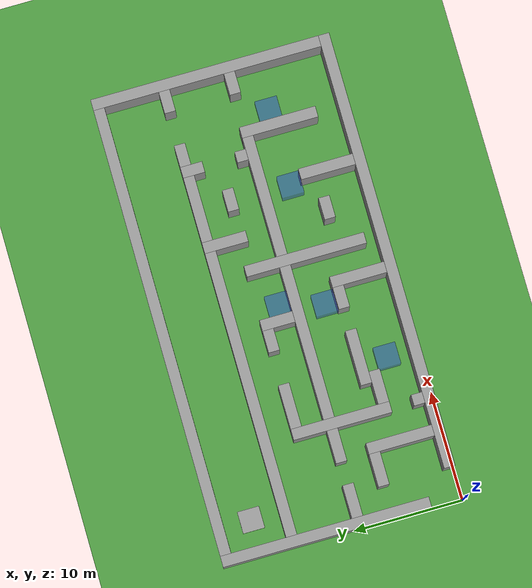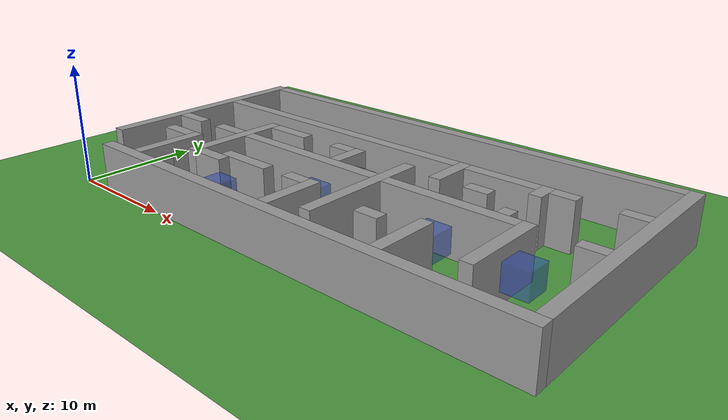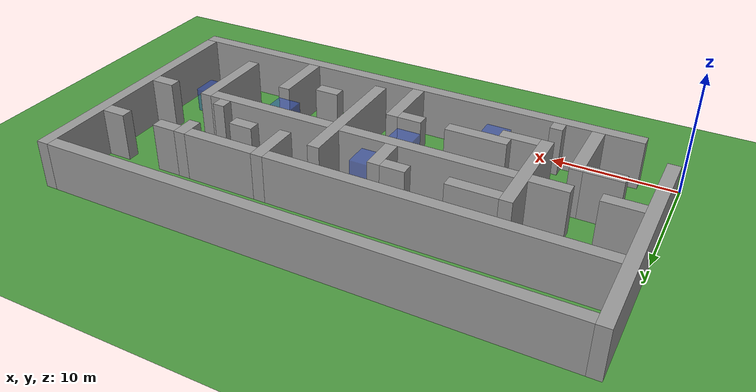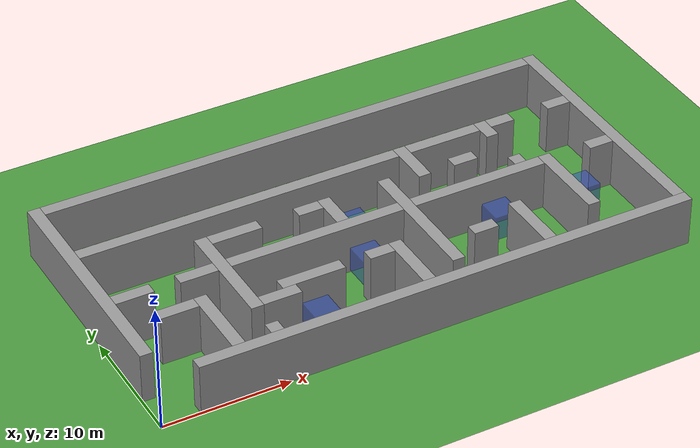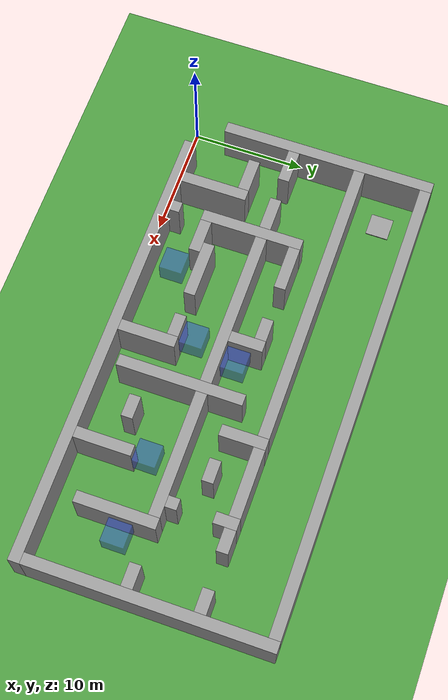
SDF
<sdf version="1.6">
 <world name="default">
  <light name="sun" type="directional">
   <pose>0 0 10 0 -0 0</pose>
   <diffuse>0.8 0.8 0.8 1</diffuse>
   <specular>0.1 0.1 0.1 1</specular>
   <attenuation>
    <range>1000</range>
    <constant>0.9</constant>
    <linear>0.01</linear>
    <quadratic>0.001</quadratic>
   </attenuation>
   <direction>-0.5 0.5 -1</direction>
  </light>
  <model name="ground_plane">
   <static>1</static>
   <link name="link">
    <collision name="collision">
     <geometry><plane><normal>0 0 1</normal><size>100 100</size></plane></geometry>
     <surface><friction><ode><mu>100</mu><mu2>50</mu2></ode></friction></surface>
    </collision>
    <visual name="visual">
     <cast_shadows>0</cast_shadows>
     <geometry><plane><normal>0 0 1</normal><size>100 100</size></plane></geometry>
     <material>
      <script><uri>file://media/materials/scripts/gazebo.material</uri><name>Gazebo/Grass</name></script>
     </material>
    </visual>
   </link>
  </model>
  <gravity>0 0 -9.8</gravity>
  <magnetic_field>6e-06 2.3e-05 -4.2e-05</magnetic_field>
  <atmosphere type="adiabatic"/>
  <physics name="default_physics" default="0" type="ode">
   <max_step_size>0.004</max_step_size>
   <real_time_factor>1</real_time_factor>
   <real_time_update_rate>250</real_time_update_rate>
  </physics>
  <scene>
   <ambient>0.4 0.4 0.4 1</ambient>
   <background>0.7 0.7 0.7 1</background>
   <shadows>1</shadows>
   <sky>
    <clouds>
     <speed>0.6</speed>
     <direction>0</direction>
     <humidity>0.5</humidity>
     <mean_size>0.5</mean_size>
     <ambient>0.8 0.8 0.8 1</ambient>
    </clouds>
   </sky>
  </scene>
  <spherical_coordinates>
   <surface_model>EARTH_WGS84</surface_model>
   <latitude_deg>0</latitude_deg>
   <longitude_deg>0</longitude_deg>
   <elevation>0</elevation>
   <heading_deg>0</heading_deg>
  </spherical_coordinates>
  <model name="wall">
   <pose>23.000000 0.500000 2 0 0 0</pose>
   <static>1</static>
   <link name="wall-link">
    <collision name="collision"><geometry><box><size>40 1 4</size></box></geometry></collision>
    <visual name="visual">
     <geometry><box><size>40 1 4</size></box></geometry>
     <material>
      <script><name>Gazebo/Grey</name><uri>file://media/materials/scripts/gazebo.material</uri></script>
     </material>
    </visual>
    <gravity>0</gravity>
   </link>
  </model>
  <model name="wall">
   <pose>6.500000 4.000000 2 0 0 0</pose>
   <static>1</static>
   <link name="wall-link">
    <collision name="collision"><geometry><box><size>1 6 4</size></box></geometry></collision>
    <visual name="visual">
     <geometry><box><size>1 6 4</size></box></geometry>
     <material>
      <script><name>Gazebo/Grey</name><uri>file://media/materials/scripts/gazebo.material</uri></script>
     </material>
    </visual>
    <gravity>0</gravity>
   </link>
  </model>
  <model name="wall">
   <pose>9.500000 1.500000 2 0 0 0</pose>
   <static>1</static>
   <link name="wall-link">
    <collision name="collision"><geometry><box><size>1 1 4</size></box></geometry></collision>
    <visual name="visual">
     <geometry><box><size>1 1 4</size></box></geometry>
     <material>
      <script><name>Gazebo/Grey</name><uri>file://media/materials/scripts/gazebo.material</uri></script>
     </material>
    </visual>
    <gravity>0</gravity>
   </link>
  </model>
  <model name="wall">
   <pose>21.500000 3.500000 2 0 0 0</pose>
   <static>1</static>
   <link name="wall-link">
    <collision name="collision"><geometry><box><size>1 5 4</size></box></geometry></collision>
    <visual name="visual">
     <geometry><box><size>1 5 4</size></box></geometry>
     <material>
      <script><name>Gazebo/Grey</name><uri>file://media/materials/scripts/gazebo.material</uri></script>
     </material>
    </visual>
    <gravity>0</gravity>
   </link>
  </model>
  <model name="wall">
   <pose>31.500000 3.500000 2 0 0 0</pose>
   <static>1</static>
   <link name="wall-link">
    <collision name="collision"><geometry><box><size>1 5 4</size></box></geometry></collision>
    <visual name="visual">
     <geometry><box><size>1 5 4</size></box></geometry>
     <material>
      <script><name>Gazebo/Grey</name><uri>file://media/materials/scripts/gazebo.material</uri></script>
     </material>
    </visual>
    <gravity>0</gravity>
   </link>
  </model>
  <model name="wall">
   <pose>42.500000 11.500000 2 0 0 0</pose>
   <static>1</static>
   <link name="wall-link">
    <collision name="collision"><geometry><box><size>1 21 4</size></box></geometry></collision>
    <visual name="visual">
     <geometry><box><size>1 21 4</size></box></geometry>
     <material>
      <script><name>Gazebo/Grey</name><uri>file://media/materials/scripts/gazebo.material</uri></script>
     </material>
    </visual>
    <gravity>0</gravity>
   </link>
  </model>
  <model name="wall">
   <pose>24.500000 7.500000 2 0 0 0</pose>
   <static>1</static>
   <link name="wall-link">
    <collision name="collision"><geometry><box><size>1 11 4</size></box></geometry></collision>
    <visual name="visual">
     <geometry><box><size>1 11 4</size></box></geometry>
     <material>
      <script><name>Gazebo/Grey</name><uri>file://media/materials/scripts/gazebo.material</uri></script>
     </material>
    </visual>
    <gravity>0</gravity>
   </link>
  </model>
  <model name="wall">
   <pose>0.500000 12.500000 2 0 0 0</pose>
   <static>1</static>
   <link name="wall-link">
    <collision name="collision"><geometry><box><size>1 19 4</size></box></geometry></collision>
    <visual name="visual">
     <geometry><box><size>1 19 4</size></box></geometry>
     <material>
      <script><name>Gazebo/Grey</name><uri>file://media/materials/scripts/gazebo.material</uri></script>
     </material>
    </visual>
    <gravity>0</gravity>
   </link>
  </model>
  <model name="wall">
   <pose>36.500000 6.500000 2 0 0 0</pose>
   <static>1</static>
   <link name="wall-link">
    <collision name="collision"><geometry><box><size>1 7 4</size></box></geometry></collision>
    <visual name="visual">
     <geometry><box><size>1 7 4</size></box></geometry>
     <material>
      <script><name>Gazebo/Grey</name><uri>file://media/materials/scripts/gazebo.material</uri></script>
     </material>
    </visual>
    <gravity>0</gravity>
   </link>
  </model>
  <model name="wall">
   <pose>9.500000 8.500000 2 0 0 0</pose>
   <static>1</static>
   <link name="wall-link">
    <collision name="collision"><geometry><box><size>1 9 4</size></box></geometry></collision>
    <visual name="visual">
     <geometry><box><size>1 9 4</size></box></geometry>
     <material>
      <script><name>Gazebo/Grey</name><uri>file://media/materials/scripts/gazebo.material</uri></script>
     </material>
    </visual>
    <gravity>0</gravity>
   </link>
  </model>
  <model name="wall">
   <pose>11.500000 4.500000 2 0 0 0</pose>
   <static>1</static>
   <link name="wall-link">
    <collision name="collision"><geometry><box><size>3 1 4</size></box></geometry></collision>
    <visual name="visual">
     <geometry><box><size>3 1 4</size></box></geometry>
     <material>
      <script><name>Gazebo/Grey</name><uri>file://media/materials/scripts/gazebo.material</uri></script>
     </material>
    </visual>
    <gravity>0</gravity>
   </link>
  </model>
  <model name="wall">
   <pose>28.000000 4.500000 2 0 0 0</pose>
   <static>1</static>
   <link name="wall-link">
    <collision name="collision"><geometry><box><size>2 1 4</size></box></geometry></collision>
    <visual name="visual">
     <geometry><box><size>2 1 4</size></box></geometry>
     <material>
      <script><name>Gazebo/Grey</name><uri>file://media/materials/scripts/gazebo.material</uri></script>
     </material>
    </visual>
    <gravity>0</gravity>
   </link>
  </model>
  <model name="wall">
   <pose>14.500000 5.500000 2 0 0 0</pose>
   <static>1</static>
   <link name="wall-link">
    <collision name="collision"><geometry><box><size>5 1 4</size></box></geometry></collision>
    <visual name="visual">
     <geometry><box><size>5 1 4</size></box></geometry>
     <material>
      <script><name>Gazebo/Grey</name><uri>file://media/materials/scripts/gazebo.material</uri></script>
     </material>
    </visual>
    <gravity>0</gravity>
   </link>
  </model>
  <model name="wall">
   <pose>20.000000 5.500000 2 0 0 0</pose>
   <static>1</static>
   <link name="wall-link">
    <collision name="collision"><geometry><box><size>2 1 4</size></box></geometry></collision>
    <visual name="visual">
     <geometry><box><size>2 1 4</size></box></geometry>
     <material>
      <script><name>Gazebo/Grey</name><uri>file://media/materials/scripts/gazebo.material</uri></script>
     </material>
    </visual>
    <gravity>0</gravity>
   </link>
  </model>
  <model name="wall">
   <pose>4.500000 6.500000 2 0 0 0</pose>
   <static>1</static>
   <link name="wall-link">
    <collision name="collision"><geometry><box><size>3 1 4</size></box></geometry></collision>
    <visual name="visual">
     <geometry><box><size>3 1 4</size></box></geometry>
     <material>
      <script><name>Gazebo/Grey</name><uri>file://media/materials/scripts/gazebo.material</uri></script>
     </material>
    </visual>
    <gravity>0</gravity>
   </link>
  </model>
  <model name="wall">
   <pose>2.500000 9.500000 2 0 0 0</pose>
   <static>1</static>
   <link name="wall-link">
    <collision name="collision"><geometry><box><size>3 1 4</size></box></geometry></collision>
    <visual name="visual">
     <geometry><box><size>3 1 4</size></box></geometry>
     <material>
      <script><name>Gazebo/Grey</name><uri>file://media/materials/scripts/gazebo.material</uri></script>
     </material>
    </visual>
    <gravity>0</gravity>
   </link>
  </model>
  <model name="wall">
   <pose>7.500000 9.500000 2 0 0 0</pose>
   <static>1</static>
   <link name="wall-link">
    <collision name="collision"><geometry><box><size>3 1 4</size></box></geometry></collision>
    <visual name="visual">
     <geometry><box><size>3 1 4</size></box></geometry>
     <material>
      <script><name>Gazebo/Grey</name><uri>file://media/materials/scripts/gazebo.material</uri></script>
     </material>
    </visual>
    <gravity>0</gravity>
   </link>
  </model>
  <model name="wall">
   <pose>17.000000 9.500000 2 0 0 0</pose>
   <static>1</static>
   <link name="wall-link">
    <collision name="collision"><geometry><box><size>14 1 4</size></box></geometry></collision>
    <visual name="visual">
     <geometry><box><size>14 1 4</size></box></geometry>
     <material>
      <script><name>Gazebo/Grey</name><uri>file://media/materials/scripts/gazebo.material</uri></script>
     </material>
    </visual>
    <gravity>0</gravity>
   </link>
  </model>
  <model name="wall">
   <pose>30.500000 9.500000 2 0 0 0</pose>
   <static>1</static>
   <link name="wall-link">
    <collision name="collision"><geometry><box><size>11 1 4</size></box></geometry></collision>
    <visual name="visual">
     <geometry><box><size>11 1 4</size></box></geometry>
     <material>
      <script><name>Gazebo/Grey</name><uri>file://media/materials/scripts/gazebo.material</uri></script>
     </material>
    </visual>
    <gravity>0</gravity>
   </link>
  </model>
  <model name="wall">
   <pose>41.000000 9.500000 2 0 0 0</pose>
   <static>1</static>
   <link name="wall-link">
    <collision name="collision"><geometry><box><size>2 1 4</size></box></geometry></collision>
    <visual name="visual">
     <geometry><box><size>2 1 4</size></box></geometry>
     <material>
      <script><name>Gazebo/Grey</name><uri>file://media/materials/scripts/gazebo.material</uri></script>
     </material>
    </visual>
    <gravity>0</gravity>
   </link>
  </model>
  <model name="wall">
   <pose>19.500000 11.500000 2 0 0 0</pose>
   <static>1</static>
   <link name="wall-link">
    <collision name="collision"><geometry><box><size>1 3 4</size></box></geometry></collision>
    <visual name="visual">
     <geometry><box><size>1 3 4</size></box></geometry>
     <material>
      <script><name>Gazebo/Grey</name><uri>file://media/materials/scripts/gazebo.material</uri></script>
     </material>
    </visual>
    <gravity>0</gravity>
   </link>
  </model>
  <model name="wall">
   <pose>34.500000 10.500000 2 0 0 0</pose>
   <static>1</static>
   <link name="wall-link">
    <collision name="collision"><geometry><box><size>1 1 4</size></box></geometry></collision>
    <visual name="visual">
     <geometry><box><size>1 1 4</size></box></geometry>
     <material>
      <script><name>Gazebo/Grey</name><uri>file://media/materials/scripts/gazebo.material</uri></script>
     </material>
    </visual>
    <gravity>0</gravity>
   </link>
  </model>
  <model name="wall">
   <pose>12.000000 12.500000 2 0 0 0</pose>
   <static>1</static>
   <link name="wall-link">
    <collision name="collision"><geometry><box><size>4 1 4</size></box></geometry></collision>
    <visual name="visual">
     <geometry><box><size>4 1 4</size></box></geometry>
     <material>
      <script><name>Gazebo/Grey</name><uri>file://media/materials/scripts/gazebo.material</uri></script>
     </material>
    </visual>
    <gravity>0</gravity>
   </link>
  </model>
  <model name="wall">
   <pose>18.000000 12.500000 2 0 0 0</pose>
   <static>1</static>
   <link name="wall-link">
    <collision name="collision"><geometry><box><size>2 1 4</size></box></geometry></collision>
    <visual name="visual">
     <geometry><box><size>2 1 4</size></box></geometry>
     <material>
      <script><name>Gazebo/Grey</name><uri>file://media/materials/scripts/gazebo.material</uri></script>
     </material>
    </visual>
    <gravity>0</gravity>
   </link>
  </model>
  <model name="wall">
   <pose>27.500000 14.000000 2 0 0 0</pose>
   <static>1</static>
   <link name="wall-link">
    <collision name="collision"><geometry><box><size>1 4 4</size></box></geometry></collision>
    <visual name="visual">
     <geometry><box><size>1 4 4</size></box></geometry>
     <material>
      <script><name>Gazebo/Grey</name><uri>file://media/materials/scripts/gazebo.material</uri></script>
     </material>
    </visual>
    <gravity>0</gravity>
   </link>
  </model>
  <model name="wall">
   <pose>31.000000 12.500000 2 0 0 0</pose>
   <static>1</static>
   <link name="wall-link">
    <collision name="collision"><geometry><box><size>2 1 4</size></box></geometry></collision>
    <visual name="visual">
     <geometry><box><size>2 1 4</size></box></geometry>
     <material>
      <script><name>Gazebo/Grey</name><uri>file://media/materials/scripts/gazebo.material</uri></script>
     </material>
    </visual>
    <gravity>0</gravity>
   </link>
  </model>
  <model name="wall">
   <pose>34.500000 15.000000 2 0 0 0</pose>
   <static>1</static>
   <link name="wall-link">
    <collision name="collision"><geometry><box><size>1 2 4</size></box></geometry></collision>
    <visual name="visual">
     <geometry><box><size>1 2 4</size></box></geometry>
     <material>
      <script><name>Gazebo/Grey</name><uri>file://media/materials/scripts/gazebo.material</uri></script>
     </material>
    </visual>
    <gravity>0</gravity>
   </link>
  </model>
  <model name="wall">
   <pose>14.000000 15.500000 2 0 0 0</pose>
   <static>1</static>
   <link name="wall-link">
    <collision name="collision"><geometry><box><size>26 1 4</size></box></geometry></collision>
    <visual name="visual">
     <geometry><box><size>26 1 4</size></box></geometry>
     <material>
      <script><name>Gazebo/Grey</name><uri>file://media/materials/scripts/gazebo.material</uri></script>
     </material>
    </visual>
    <gravity>0</gravity>
   </link>
  </model>
  <model name="wall">
   <pose>31.000000 15.500000 2 0 0 0</pose>
   <static>1</static>
   <link name="wall-link">
    <collision name="collision"><geometry><box><size>6 1 4</size></box></geometry></collision>
    <visual name="visual">
     <geometry><box><size>6 1 4</size></box></geometry>
     <material>
      <script><name>Gazebo/Grey</name><uri>file://media/materials/scripts/gazebo.material</uri></script>
     </material>
    </visual>
    <gravity>0</gravity>
   </link>
  </model>
  <model name="wall">
   <pose>36.000000 15.500000 2 0 0 0</pose>
   <static>1</static>
   <link name="wall-link">
    <collision name="collision"><geometry><box><size>2 1 4</size></box></geometry></collision>
    <visual name="visual">
     <geometry><box><size>2 1 4</size></box></geometry>
     <material>
      <script><name>Gazebo/Grey</name><uri>file://media/materials/scripts/gazebo.material</uri></script>
     </material>
    </visual>
    <gravity>0</gravity>
   </link>
  </model>
  <model name="wall">
   <pose>41.000000 15.500000 2 0 0 0</pose>
   <static>1</static>
   <link name="wall-link">
    <collision name="collision"><geometry><box><size>2 1 4</size></box></geometry></collision>
    <visual name="visual">
     <geometry><box><size>2 1 4</size></box></geometry>
     <material>
      <script><name>Gazebo/Grey</name><uri>file://media/materials/scripts/gazebo.material</uri></script>
     </material>
    </visual>
    <gravity>0</gravity>
   </link>
  </model>
  <model name="wall">
   <pose>21.500000 21.500000 2 0 0 0</pose>
   <static>1</static>
   <link name="wall-link">
    <collision name="collision"><geometry><box><size>41 1 4</size></box></geometry></collision>
    <visual name="visual">
     <geometry><box><size>41 1 4</size></box></geometry>
     <material>
      <script><name>Gazebo/Grey</name><uri>file://media/materials/scripts/gazebo.material</uri></script>
     </material>
    </visual>
    <gravity>0</gravity>
   </link>
  </model>
  <include><uri>model://boostbox</uri><pose>14 3 2 0 -0 0</pose></include>
  <include><uri>model://boostbox</uri><pose>20 7 2 0 -0 0</pose></include>
  <include><uri>model://boostbox</uri><pose>31 7 2 0 -0 0</pose></include>
  <include><uri>model://boostbox</uri><pose>38 7 2 0 -0 0</pose></include>
  <include><uri>model://boostbox</uri><pose>21 11 2 0 -0 0</pose></include>
  <model name="goal">
   <pose>3.5 18.5 0.05 0 -0 0</pose>
   <static>1</static>
   <link name="link">
    <collision name="collision"><geometry><box><size>2.0 2.0 0.1</size></box></geometry></collision>
    <visual name="visual">
     <geometry><box><size>2.0 2.0 0.1</size></box></geometry>
     <material>
      <script><name>Gazebo/Grey</name><uri>file://media/materials/scripts/gazebo.material</uri></script>
     </material>
    </visual>
   </link>
  </model>
 </world>
</sdf>

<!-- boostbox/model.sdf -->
<sdf version="1.6">
  <model name="boostbox">
    <link name="base">
      <gravity>false</gravity>
      <visual name="visual">
        <geometry>
          <box>
            <size>2 2 2</size>
          </box>
        </geometry>
        <material>
          <script>
            <name>Gazebo/BlueTransparent</name>
            <uri>file://media/materials/scripts/gazebo.material</uri>
          </script>
        </material>
      </visual>
    </link>
  </model>
</sdf>
